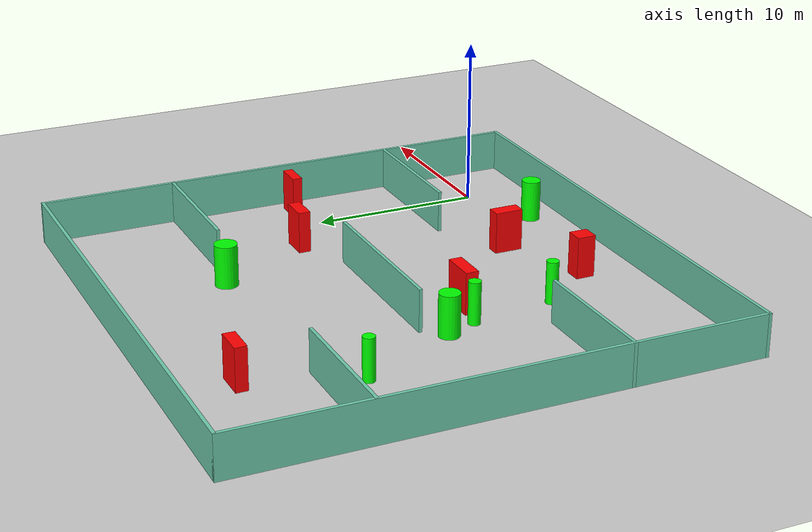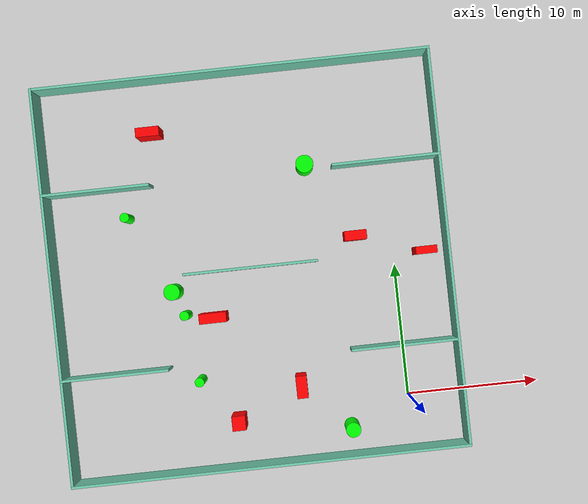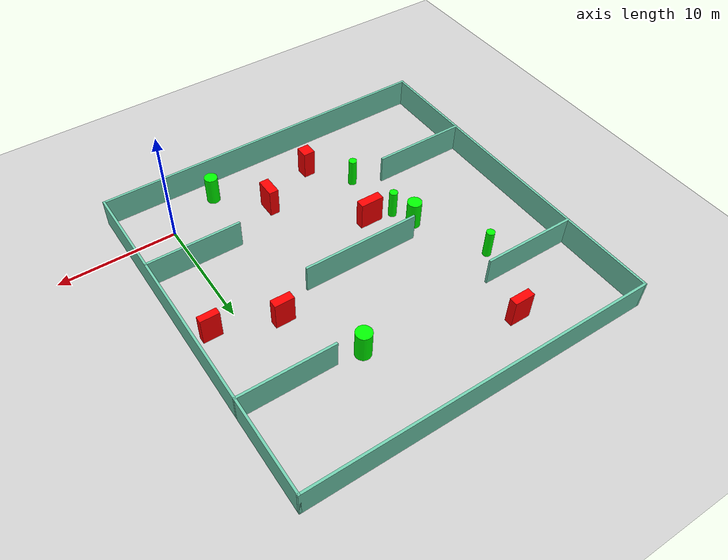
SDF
<sdf version="1.7">
 <world name="default">
  <light name="sun" type="directional">
   <pose>0 0 10 0 -0 0</pose>
   <diffuse>0.8 0.8 0.8 1</diffuse>
   <specular>0.2 0.2 0.2 1</specular>
   <attenuation>
    <range>1000</range>
    <constant>0.9</constant>
    <linear>0.01</linear>
    <quadratic>0.001</quadratic>
   </attenuation>
   <direction>-0.5 0.1 -0.9</direction>
   <spot><inner_angle>0</inner_angle><outer_angle>0</outer_angle><falloff>0</falloff></spot>
  </light>
  <model name="ground_plane">
   <static>1</static>
   <link name="link">
    <collision name="collision">
     <geometry><plane><normal>0 0 1</normal><size>100 100</size></plane></geometry>
     <surface>
      <contact><collide_bitmask>65535</collide_bitmask></contact>
      <friction><ode><mu>100</mu><mu2>50</mu2></ode></friction>
     </surface>
    </collision>
    <visual name="visual">
     <cast_shadows>0</cast_shadows>
     <geometry><plane><normal>0 0 1</normal><size>100 100</size></plane></geometry>
     <material>
      <script><uri>file://media/materials/scripts/gazebo.material</uri><name>Gazebo/Grey</name></script>
     </material>
    </visual>
   </link>
  </model>
  <gravity>0 0 -9.8</gravity>
  <magnetic_field>6e-06 2.3e-05 -4.2e-05</magnetic_field>
  <atmosphere type="adiabatic"/>
  <physics type="ode">
   <max_step_size>0.001</max_step_size>
   <real_time_factor>1</real_time_factor>
   <real_time_update_rate>1000</real_time_update_rate>
  </physics>
  <scene><ambient>0.4 0.4 0.4 1</ambient><background>0.7 0.7 0.7 1</background><shadows>1</shadows></scene>
  <spherical_coordinates>
   <surface_model>EARTH_WGS84</surface_model>
   <latitude_deg>0</latitude_deg>
   <longitude_deg>0</longitude_deg>
   <elevation>0</elevation>
   <heading_deg>0</heading_deg>
  </spherical_coordinates>
  <model name="my_base_walls">
   <link name="Wall_10">
    <collision name="Wall_10_Collision">
     <geometry><box><size>8.2 0.2 2.5</size></box></geometry>
     <pose>0 0 1.25 0 -0 0</pose>
    </collision>
    <visual name="Wall_10_Visual">
     <pose>0 0 1.25 0 -0 0</pose>
     <geometry><box><size>8.2 0.2 2.5</size></box></geometry>
     <material>
      <script><uri>file://media/materials/scripts/gazebo.material</uri><name>Gazebo/Grey</name></script>
      <ambient>0.435294 0.796078 0.67451 1</ambient>
     </material>
     <meta><layer>0</layer></meta>
    </visual>
    <pose>-11 -7 0 0 -0 0</pose>
   </link>
   <link name="Wall_12">
    <collision name="Wall_12_Collision">
     <geometry><box><size>8.2 0.2 2.5</size></box></geometry>
     <pose>0 0 1.25 0 -0 0</pose>
    </collision>
    <visual name="Wall_12_Visual">
     <pose>0 0 1.25 0 -0 0</pose>
     <geometry><box><size>8.2 0.2 2.5</size></box></geometry>
     <material>
      <script><uri>file://media/materials/scripts/gazebo.material</uri><name>Gazebo/Grey</name></script>
      <ambient>0.435294 0.796078 0.67451 1</ambient>
     </material>
     <meta><layer>0</layer></meta>
    </visual>
    <pose>-11 7 0 0 -0 0</pose>
   </link>
   <link name="Wall_14">
    <collision name="Wall_14_Collision">
     <geometry><box><size>8.2 0.2 2.5</size></box></geometry>
     <pose>0 0 1.25 0 -0 0</pose>
    </collision>
    <visual name="Wall_14_Visual">
     <pose>0 0 1.25 0 -0 0</pose>
     <geometry><box><size>8.2 0.2 2.5</size></box></geometry>
     <material>
      <script><uri>file://media/materials/scripts/gazebo.material</uri><name>Gazebo/Grey</name></script>
      <ambient>0.435294 0.796078 0.67451 1</ambient>
     </material>
     <meta><layer>0</layer></meta>
    </visual>
    <pose>11 7 0 0 -0 3.14159</pose>
   </link>
   <link name="Wall_16">
    <collision name="Wall_16_Collision">
     <geometry><box><size>10.2 0.2 2.5</size></box></geometry>
     <pose>0 0 1.25 0 -0 0</pose>
    </collision>
    <visual name="Wall_16_Visual">
     <pose>0 0 1.25 0 -0 0</pose>
     <geometry><box><size>10.2 0.2 2.5</size></box></geometry>
     <material>
      <script><uri>file://media/materials/scripts/gazebo.material</uri><name>Gazebo/Grey</name></script>
      <ambient>0.435294 0.796078 0.67451 1</ambient>
     </material>
     <meta><layer>0</layer></meta>
    </visual>
    <pose>0 0 0 0 -0 3.14159</pose>
   </link>
   <link name="Wall_2">
    <collision name="Wall_2_Collision">
     <geometry><box><size>30.2 0.2 2.5</size></box></geometry>
     <pose>0 0 1.25 0 -0 0</pose>
    </collision>
    <visual name="Wall_2_Visual">
     <pose>0 0 1.25 0 -0 0</pose>
     <geometry><box><size>30.2 0.2 2.5</size></box></geometry>
     <material>
      <script><uri>file://media/materials/scripts/gazebo.material</uri><name>Gazebo/Grey</name></script>
      <ambient>0.435294 0.796078 0.67451 1</ambient>
     </material>
     <meta><layer>0</layer></meta>
    </visual>
    <pose>0 -15 0 0 -0 3.14159</pose>
   </link>
   <link name="Wall_3">
    <collision name="Wall_3_Collision">
     <geometry><box><size>30.2 0.2 2.5</size></box></geometry>
     <pose>0 0 1.25 0 -0 0</pose>
    </collision>
    <visual name="Wall_3_Visual">
     <pose>0 0 1.25 0 -0 0</pose>
     <geometry><box><size>30.2 0.2 2.5</size></box></geometry>
     <material>
      <script><uri>file://media/materials/scripts/gazebo.material</uri><name>Gazebo/Grey</name></script>
      <ambient>0.435294 0.796078 0.67451 1</ambient>
     </material>
     <meta><layer>0</layer></meta>
    </visual>
    <pose>-15 0 0 0 -0 1.5708</pose>
   </link>
   <link name="Wall_4">
    <collision name="Wall_4_Collision">
     <geometry><box><size>30.2 0.2 2.5</size></box></geometry>
     <pose>0 0 1.25 0 -0 0</pose>
    </collision>
    <visual name="Wall_4_Visual">
     <pose>0 0 1.25 0 -0 0</pose>
     <geometry><box><size>30.2 0.2 2.5</size></box></geometry>
     <material>
      <script><uri>file://media/materials/scripts/gazebo.material</uri><name>Gazebo/Grey</name></script>
      <ambient>0.435294 0.796078 0.67451 1</ambient>
     </material>
     <meta><layer>0</layer></meta>
    </visual>
    <pose>0 15 0 0 -0 0</pose>
   </link>
   <link name="Wall_6">
    <collision name="Wall_6_Collision">
     <geometry><box><size>30.2 0.2 2.5</size></box></geometry>
     <pose>0 0 1.25 0 -0 0</pose>
    </collision>
    <visual name="Wall_6_Visual">
     <pose>0 0 1.25 0 -0 0</pose>
     <geometry><box><size>30.2 0.2 2.5</size></box></geometry>
     <material>
      <script><uri>file://media/materials/scripts/gazebo.material</uri><name>Gazebo/Grey</name></script>
      <ambient>0.435294 0.796078 0.67451 1</ambient>
     </material>
     <meta><layer>0</layer></meta>
    </visual>
    <pose>15 0 0 0 -0 1.5708</pose>
   </link>
   <link name="Wall_8">
    <collision name="Wall_8_Collision">
     <geometry><box><size>8.2 0.2 2.5</size></box></geometry>
     <pose>0 0 1.25 0 -0 0</pose>
    </collision>
    <visual name="Wall_8_Visual">
     <pose>0 0 1.25 0 -0 0</pose>
     <geometry><box><size>8.2 0.2 2.5</size></box></geometry>
     <material>
      <script><uri>file://media/materials/scripts/gazebo.material</uri><name>Gazebo/Grey</name></script>
      <ambient>0.435294 0.796078 0.67451 1</ambient>
     </material>
     <meta><layer>0</layer></meta>
    </visual>
    <pose>11 -7 0 0 -0 3.14159</pose>
   </link>
   <static>1</static>
   <pose>-11 11 0 0 -0 0</pose>
  </model>
  <model name="cylinder1">
   <static>1</static>
   <link name="link">
    <inertial>
     <mass>1</mass>
     <inertia><ixx>0.5</ixx><ixy>0</ixy><ixz>0</ixz><iyy>0.5</iyy><iyz>0</iyz><izz>1</izz></inertia>
    </inertial>
    <collision name="collision">
     <geometry><cylinder><radius>0.5630897090786982</radius><length>2.5</length></cylinder></geometry>
    </collision>
    <visual name="visual">
     <geometry><cylinder><radius>0.5630897090786982</radius><length>2.5</length></cylinder></geometry>
     <material>
      <ambient>0 1 0 1</ambient>
      <diffuse>0 1 0 1</diffuse>
      <specular>0.1 0.1 0.1 1</specular>
      <emissive>0 0 0 0</emissive>
     </material>
    </visual>
   </link>
   <pose>-4.588712835931538 -1.9295442825017037 1.25 0 0 0</pose>
  </model>
  <model name="cylinder2">
   <static>1</static>
   <link name="link">
    <inertial>
     <mass>1</mass>
     <inertia><ixx>0.5</ixx><ixy>0</ixy><ixz>0</ixz><iyy>0.5</iyy><iyz>0</iyz><izz>1</izz></inertia>
    </inertial>
    <collision name="collision">
     <geometry><cylinder><radius>0.35323256081618615</radius><length>2.5</length></cylinder></geometry>
    </collision>
    <visual name="visual">
     <geometry><cylinder><radius>0.35323256081618615</radius><length>2.5</length></cylinder></geometry>
     <material>
      <ambient>0 1 0 1</ambient>
      <diffuse>0 1 0 1</diffuse>
      <specular>0.1 0.1 0.1 1</specular>
      <emissive>0 0 0 0</emissive>
     </material>
    </visual>
   </link>
   <pose>-15.689732064548673 2.8352209652442397 1.25 0 0 0</pose>
  </model>
  <model name="cylinder3">
   <static>1</static>
   <link name="link">
    <inertial>
     <mass>1</mass>
     <inertia><ixx>0.5</ixx><ixy>0</ixy><ixz>0</ixz><iyy>0.5</iyy><iyz>0</iyz><izz>1</izz></inertia>
    </inertial>
    <collision name="collision">
     <geometry><cylinder><radius>0.6097659957272534</radius><length>2.5</length></cylinder></geometry>
    </collision>
    <visual name="visual">
     <geometry><cylinder><radius>0.6097659957272534</radius><length>2.5</length></cylinder></geometry>
     <material>
      <ambient>0 1 0 1</ambient>
      <diffuse>0 1 0 1</diffuse>
      <specular>0.1 0.1 0.1 1</specular>
      <emissive>0 0 0 0</emissive>
     </material>
    </visual>
   </link>
   <pose>-17.043639470735638 9.773013548698245 1.25 0 0 0</pose>
  </model>
  <model name="cylinder4">
   <static>1</static>
   <link name="link">
    <inertial>
     <mass>1</mass>
     <inertia><ixx>0.5</ixx><ixy>0</ixy><ixz>0</ixz><iyy>0.5</iyy><iyz>0</iyz><izz>1</izz></inertia>
    </inertial>
    <collision name="collision">
     <geometry><cylinder><radius>0.3553478300246474</radius><length>2.5</length></cylinder></geometry>
    </collision>
    <visual name="visual">
     <geometry><cylinder><radius>0.3553478300246474</radius><length>2.5</length></cylinder></geometry>
     <material>
      <ambient>0 1 0 1</ambient>
      <diffuse>0 1 0 1</diffuse>
      <specular>0.1 0.1 0.1 1</specular>
      <emissive>0 0 0 0</emissive>
     </material>
    </visual>
   </link>
   <pose>-16.29056819871109 7.910609610783554 1.25 0 0 0</pose>
  </model>
  <model name="cylinder5">
   <static>1</static>
   <link name="link">
    <inertial>
     <mass>1</mass>
     <inertia><ixx>0.5</ixx><ixy>0</ixy><ixz>0</ixz><iyy>0.5</iyy><iyz>0</iyz><izz>1</izz></inertia>
    </inertial>
    <collision name="collision">
     <geometry><cylinder><radius>0.6655651146424992</radius><length>2.5</length></cylinder></geometry>
    </collision>
    <visual name="visual">
     <geometry><cylinder><radius>0.6655651146424992</radius><length>2.5</length></cylinder></geometry>
     <material>
      <ambient>0 1 0 1</ambient>
      <diffuse>0 1 0 1</diffuse>
      <specular>0.1 0.1 0.1 1</specular>
      <emissive>0 0 0 0</emissive>
     </material>
    </visual>
   </link>
   <pose>-6.136274845377368 18.28208073568267 1.25 0 0 0</pose>
  </model>
  <model name="cylinder6">
   <static>1</static>
   <link name="link">
    <inertial>
     <mass>1</mass>
     <inertia><ixx>0.5</ixx><ixy>0</ixy><ixz>0</ixz><iyy>0.5</iyy><iyz>0</iyz><izz>1</izz></inertia>
    </inertial>
    <collision name="collision">
     <geometry><cylinder><radius>0.35182061371072415</radius><length>2.5</length></cylinder></geometry>
    </collision>
    <visual name="visual">
     <geometry><cylinder><radius>0.35182061371072415</radius><length>2.5</length></cylinder></geometry>
     <material>
      <ambient>0 1 0 1</ambient>
      <diffuse>0 1 0 1</diffuse>
      <specular>0.1 0.1 0.1 1</specular>
      <emissive>0 0 0 0</emissive>
     </material>
    </visual>
   </link>
   <pose>-19.96867642759714 15.715930786558761 1.25 0 0 0</pose>
  </model>
  <model name="box1">
   <static>1</static>
   <link name="link">
    <inertial>
     <mass>1</mass>
     <inertia><ixx>0.083</ixx><ixy>0</ixy><ixz>0</ixz><iyy>0.083</iyy><iyz>0</iyz><izz>0.083</izz></inertia>
    </inertial>
    <collision name="collision">
     <geometry><box><size>1.7764033845013276 0.7026752171935154 2.5</size></box></geometry>
    </collision>
    <visual name="visual">
     <geometry><box><size>1.7764033845013276 0.7026752171935154 2.5</size></box></geometry>
     <material>
      <ambient>1 0 0 1</ambient>
      <diffuse>1 0 0 1</diffuse>
      <specular>0.1 0.1 0.1 1</specular>
      <emissive>0 0 0 0</emissive>
     </material>
    </visual>
    <sensor name="my_contact" type="contact">
     <contact><collision>box_collision</collision><topic>__default_topic__</topic></contact>
    </sensor>
   </link>
   <pose>-17.603970875832417 21.94097163627472 1.25 0 0 0</pose>
  </model>
  <model name="box2">
   <static>1</static>
   <link name="link">
    <inertial>
     <mass>1</mass>
     <inertia><ixx>0.083</ixx><ixy>0</ixy><ixz>0</ixz><iyy>0.083</iyy><iyz>0</iyz><izz>0.083</izz></inertia>
    </inertial>
    <collision name="collision">
     <geometry><box><size>0.831384299823998 1.6831864496843498 2.5</size></box></geometry>
    </collision>
    <visual name="visual">
     <geometry><box><size>0.831384299823998 1.6831864496843498 2.5</size></box></geometry>
     <material>
      <ambient>1 0 0 1</ambient>
      <diffuse>1 0 0 1</diffuse>
      <specular>0.1 0.1 0.1 1</specular>
      <emissive>0 0 0 0</emissive>
     </material>
    </visual>
    <sensor name="my_contact" type="contact">
     <contact><collision>box_collision</collision><topic>__default_topic__</topic></contact>
    </sensor>
   </link>
   <pose>-8.097792656744648 1.662956916545502 1.25 0 0 0</pose>
  </model>
  <model name="box3">
   <static>1</static>
   <link name="link">
    <inertial>
     <mass>1</mass>
     <inertia><ixx>0.083</ixx><ixy>0</ixy><ixz>0</ixz><iyy>0.083</iyy><iyz>0</iyz><izz>0.083</izz></inertia>
    </inertial>
    <collision name="collision">
     <geometry><box><size>1.6769938390105634 0.7232617897572521 2.5</size></box></geometry>
    </collision>
    <visual name="visual">
     <geometry><box><size>1.6769938390105634 0.7232617897572521 2.5</size></box></geometry>
     <material>
      <ambient>1 0 0 1</ambient>
      <diffuse>1 0 0 1</diffuse>
      <specular>0.1 0.1 0.1 1</specular>
      <emissive>0 0 0 0</emissive>
     </material>
    </visual>
    <sensor name="my_contact" type="contact">
     <contact><collision>box_collision</collision><topic>__default_topic__</topic></contact>
    </sensor>
   </link>
   <pose>-2.887826900382425 12.568624309734584 1.25 0 0 0</pose>
  </model>
  <model name="box4">
   <static>1</static>
   <link name="link">
    <inertial>
     <mass>1</mass>
     <inertia><ixx>0.083</ixx><ixy>0</ixy><ixz>0</ixz><iyy>0.083</iyy><iyz>0</iyz><izz>0.083</izz></inertia>
    </inertial>
    <collision name="collision">
     <geometry><box><size>1.6163565956186463 0.5872511190842813 2.5</size></box></geometry>
    </collision>
    <visual name="visual">
     <geometry><box><size>1.6163565956186463 0.5872511190842813 2.5</size></box></geometry>
     <material>
      <ambient>1 0 0 1</ambient>
      <diffuse>1 0 0 1</diffuse>
      <specular>0.1 0.1 0.1 1</specular>
      <emissive>0 0 0 0</emissive>
     </material>
    </visual>
    <sensor name="my_contact" type="contact">
     <contact><collision>box_collision</collision><topic>__default_topic__</topic></contact>
    </sensor>
   </link>
   <pose>2.2782983576876 10.917395681901006 1.25 0 0 0</pose>
  </model>
  <model name="box5">
   <static>1</static>
   <link name="link">
    <inertial>
     <mass>1</mass>
     <inertia><ixx>0.083</ixx><ixy>0</ixy><ixz>0</ixz><iyy>0.083</iyy><iyz>0</iyz><izz>0.083</izz></inertia>
    </inertial>
    <collision name="collision">
     <geometry><box><size>2.0622137856572724 0.7587880228296406 2.5</size></box></geometry>
    </collision>
    <visual name="visual">
     <geometry><box><size>2.0622137856572724 0.7587880228296406 2.5</size></box></geometry>
     <material>
      <ambient>1 0 0 1</ambient>
      <diffuse>1 0 0 1</diffuse>
      <specular>0.1 0.1 0.1 1</specular>
      <emissive>0 0 0 0</emissive>
     </material>
    </visual>
    <sensor name="my_contact" type="contact">
     <contact><collision>box_collision</collision><topic>__default_topic__</topic></contact>
    </sensor>
   </link>
   <pose>-14.211015542116954 7.524470350016143 1.25 0 0 0</pose>
  </model>
  <model name="box6">
   <static>1</static>
   <link name="link">
    <inertial>
     <mass>1</mass>
     <inertia><ixx>0.083</ixx><ixy>0</ixy><ixz>0</ixz><iyy>0.083</iyy><iyz>0</iyz><izz>0.083</izz></inertia>
    </inertial>
    <collision name="collision">
     <geometry><box><size>1.02239963646698 1.099835812053878 2.5</size></box></geometry>
    </collision>
    <visual name="visual">
     <geometry><box><size>1.02239963646698 1.099835812053878 2.5</size></box></geometry>
     <material>
      <ambient>1 0 0 1</ambient>
      <diffuse>1 0 0 1</diffuse>
      <specular>0.1 0.1 0.1 1</specular>
      <emissive>0 0 0 0</emissive>
     </material>
    </visual>
    <sensor name="my_contact" type="contact">
     <contact><collision>box_collision</collision><topic>__default_topic__</topic></contact>
    </sensor>
   </link>
   <pose>-13.091619789695649 -0.5341799202715771 1.25 0 0 0</pose>
  </model>
 </world>
</sdf>
